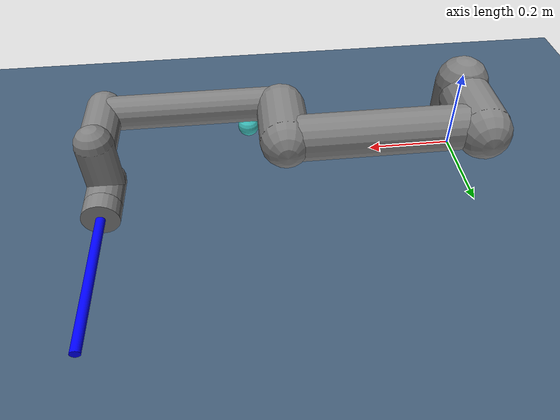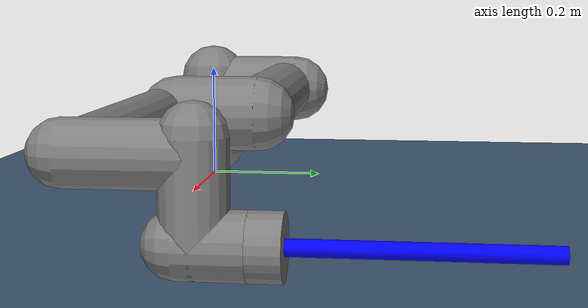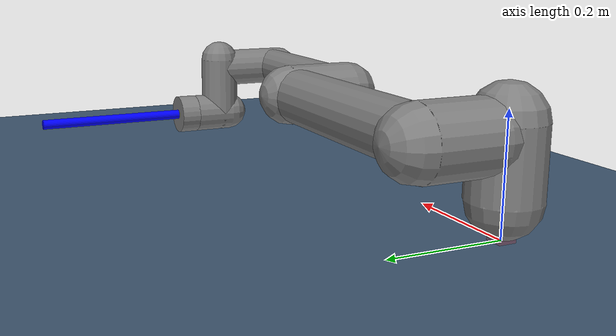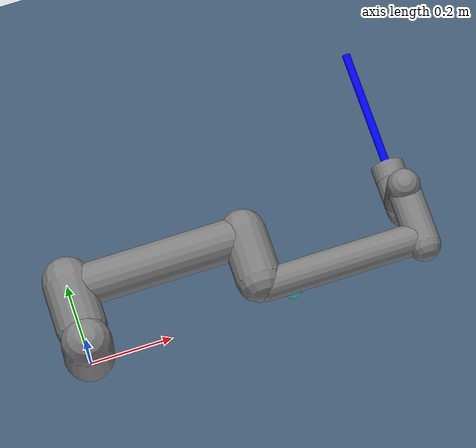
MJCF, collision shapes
<mujoco model="unnamed_model">
  <compiler angle="radian"/>

  <option integrator="implicitfast"/>

  <default>
    <default class="/"/>
    <default class="ur5e/">
      <default class="ur5e/ur5e">
        <material shininess="0.25"/>
        <joint range="-6.28319 6.28319" armature="0.1"/>
        <site size="0.001 0.005 0.005" group="4" rgba="0.5 0.5 0.5 0.3"/>
        <general ctrlrange="-6.2831 6.2831" forcerange="-150 150" biastype="affine" gainprm="2000" biasprm="0 -2000 -400"/>
        <default class="ur5e/size3">
          <default class="ur5e/size3_limited">
            <joint range="-3.1415 3.1415"/>
            <general ctrlrange="-3.1415 3.1415"/>
          </default>
        </default>
        <default class="ur5e/size1">
          <general forcerange="-28 28" gainprm="500" biasprm="0 -500 -100"/>
        </default>
        <default class="ur5e/visual">
          <geom type="mesh" contype="0" conaffinity="0" group="2"/>
        </default>
        <default class="ur5e/collision">
          <geom type="capsule" group="3"/>
          <default class="ur5e/eef_collision">
            <geom type="cylinder"/>
          </default>
        </default>
      </default>
    </default>
    <default class="ur5e/unnamed_model/"/>
  </default>

  <asset>
    <texture type="2d" name="//unnamed_texture_0" builtin="checker" rgb1="0.2 0.3 0.4" rgb2="0.3 0.4 0.5" width="300" height="300"/>
    <texture type="skybox" name="ur5e/unnamed_model//unnamed_texture_0" builtin="gradient" rgb1="1 1 1" rgb2="0.6 0.8 1" width="256" height="1536"/>
    <material name="grid" class="/" texture="//unnamed_texture_0" texrepeat="5 5" reflectance="0.2"/>
    <material name="ur5e/black" class="ur5e/ur5e" rgba="0.033 0.033 0.033 1"/>
    <material name="ur5e/jointgray" class="ur5e/ur5e" rgba="0.278 0.278 0.278 1"/>
    <material name="ur5e/linkgray" class="ur5e/ur5e" rgba="0.82 0.82 0.82 1"/>
    <material name="ur5e/urblue" class="ur5e/ur5e" rgba="0.49 0.678 0.8 1"/>
    <mesh name="ur5e/base_0" class="ur5e/" file="base_0-d5328a99917358d9aa384f12743fe73698461d1c.obj"/>
    <mesh name="ur5e/base_1" class="ur5e/" file="base_1-d1c667ae5f87b9c900fdeadad850205153846396.obj"/>
    <mesh name="ur5e/shoulder_0" class="ur5e/" file="shoulder_0-89051b80580d45ef39cb220bf068742b01770552.obj"/>
    <mesh name="ur5e/shoulder_1" class="ur5e/" file="shoulder_1-50ba15e82459989cf7f17cba7b1aafbca2781206.obj"/>
    <mesh name="ur5e/shoulder_2" class="ur5e/" file="shoulder_2-29ad171bec79e2912abb81d250aaf5ff9a67bc60.obj"/>
    <mesh name="ur5e/upperarm_0" class="ur5e/" file="upperarm_0-16bfdf8d1b19d35ef0adbc4cf29ab0c7edb62dcf.obj"/>
    <mesh name="ur5e/upperarm_1" class="ur5e/" file="upperarm_1-c53724435bec35e1b608145457af767b038f4fd1.obj"/>
    <mesh name="ur5e/upperarm_2" class="ur5e/" file="upperarm_2-199e0d0c1baa55a078742ed298800ff26d072c09.obj"/>
    <mesh name="ur5e/upperarm_3" class="ur5e/" file="upperarm_3-62f2bba935d9ab94800a49bcb6ede7b0fa9dd071.obj"/>
    <mesh name="ur5e/forearm_0" class="ur5e/" file="forearm_0-7994229075bdd0e4a5c860ca174278ee8eda8229.obj"/>
    <mesh name="ur5e/forearm_1" class="ur5e/" file="forearm_1-c72848167eef89e0d9801ddd7da516e7e878776e.obj"/>
    <mesh name="ur5e/forearm_2" class="ur5e/" file="forearm_2-3a33518f421ed893ff9b0d759af07b0e5900e78c.obj"/>
    <mesh name="ur5e/forearm_3" class="ur5e/" file="forearm_3-54cad2556a94cdda04a7cef5c84554a7d9f3ab03.obj"/>
    <mesh name="ur5e/wrist1_0" class="ur5e/" file="wrist1_0-6876ccb9d0084054268dd6aec007e5a61aea6c2d.obj"/>
    <mesh name="ur5e/wrist1_1" class="ur5e/" file="wrist1_1-0f7e6640a9dfb98e58078997f5f82bd433879387.obj"/>
    <mesh name="ur5e/wrist1_2" class="ur5e/" file="wrist1_2-3f6dcae8c736e2c42db3746db7f24ac4516aaca7.obj"/>
    <mesh name="ur5e/wrist2_0" class="ur5e/" file="wrist2_0-fdb3f7bc360f8f37f6be6270c8b507291dc9b01c.obj"/>
    <mesh name="ur5e/wrist2_1" class="ur5e/" file="wrist2_1-258ca475798c530d954723dc29f3d67086ead0d9.obj"/>
    <mesh name="ur5e/wrist2_2" class="ur5e/" file="wrist2_2-c6734971531db7f2f09e746377aa9faccb69b192.obj"/>
    <mesh name="ur5e/wrist3" class="ur5e/" file="wrist3-a1fffb4f599e121fb18be40e087b6fd7fb164e59.obj"/>
  </asset>

  <worldbody>
    <geom name="//unnamed_geom_0" class="/" size="2 2 0.1" type="plane" material="grid"/>
    <light name="//unnamed_light_0" class="/" pos="-2 -1 3" dir="0.666667 0.333333 -0.666667"/>
    <light name="//unnamed_light_1" class="/" pos="2 -1 3" dir="-0.666667 0.333333 -0.666667"/>
    <body name="mocap" mocap="true">
      <geom name="//unnamed_geom_1" class="/" size="0.015 0.015 0.015" type="box" contype="0" conaffinity="0" rgba="1 0 0 0.2"/>
    </body>
    <body name="ur5e/" quat="0.707107 0 0 -0.707107">
      <light name="ur5e/spotlight" class="ur5e/" target="ur5e/wrist_2_link" pos="0 -1 2" dir="0 0 -1" mode="targetbodycom"/>
      <body name="ur5e/base" childclass="ur5e/ur5e" quat="0.707107 0 0 0.707107">
        <inertial pos="0 0 0" mass="4" diaginertia="0.00443333 0.00443333 0.0072"/>
        <geom name="ur5e//unnamed_geom_0" class="ur5e/visual" material="ur5e/black" mesh="ur5e/base_0"/>
        <geom name="ur5e//unnamed_geom_1" class="ur5e/visual" material="ur5e/jointgray" mesh="ur5e/base_1"/>
        <body name="ur5e/shoulder_link" pos="0 0 0.163">
          <inertial pos="0 0 0" mass="3.7" diaginertia="0.0102675 0.0102675 0.00666"/>
          <joint name="ur5e/shoulder_pan_joint" class="ur5e/size3" pos="0 0 0" axis="0 0 1"/>
          <geom name="ur5e//unnamed_geom_2" class="ur5e/visual" material="ur5e/urblue" mesh="ur5e/shoulder_0"/>
          <geom name="ur5e//unnamed_geom_3" class="ur5e/visual" material="ur5e/black" mesh="ur5e/shoulder_1"/>
          <geom name="ur5e//unnamed_geom_4" class="ur5e/visual" material="ur5e/jointgray" mesh="ur5e/shoulder_2"/>
          <geom name="ur5e//unnamed_geom_5" class="ur5e/collision" size="0.06 0.06" pos="0 0 -0.04"/>
          <body name="ur5e/upper_arm_link" pos="0 0.138 0" quat="0.707107 0 0.707107 0">
            <inertial pos="0 0 0.2125" mass="8.393" diaginertia="0.133886 0.133886 0.0151074"/>
            <joint name="ur5e/shoulder_lift_joint" class="ur5e/size3" pos="0 0 0" axis="0 1 0"/>
            <geom name="ur5e//unnamed_geom_6" class="ur5e/visual" material="ur5e/linkgray" mesh="ur5e/upperarm_0"/>
            <geom name="ur5e//unnamed_geom_7" class="ur5e/visual" material="ur5e/black" mesh="ur5e/upperarm_1"/>
            <geom name="ur5e//unnamed_geom_8" class="ur5e/visual" material="ur5e/jointgray" mesh="ur5e/upperarm_2"/>
            <geom name="ur5e//unnamed_geom_9" class="ur5e/visual" material="ur5e/urblue" mesh="ur5e/upperarm_3"/>
            <geom name="ur5e//unnamed_geom_10" class="ur5e/collision" size="0.06 0.06" pos="0 -0.04 0" quat="0.707107 0.707107 0 0"/>
            <geom name="ur5e//unnamed_geom_11" class="ur5e/collision" size="0.05 0.2" pos="0 0 0.2"/>
            <body name="ur5e/forearm_link" pos="0 -0.131 0.425">
              <inertial pos="0 0 0.196" mass="2.275" diaginertia="0.0311796 0.0311796 0.004095"/>
              <joint name="ur5e/elbow_joint" class="ur5e/size3_limited" pos="0 0 0" axis="0 1 0"/>
              <geom name="ur5e//unnamed_geom_12" class="ur5e/visual" material="ur5e/urblue" mesh="ur5e/forearm_0"/>
              <geom name="ur5e//unnamed_geom_13" class="ur5e/visual" material="ur5e/linkgray" mesh="ur5e/forearm_1"/>
              <geom name="ur5e//unnamed_geom_14" class="ur5e/visual" material="ur5e/black" mesh="ur5e/forearm_2"/>
              <geom name="ur5e//unnamed_geom_15" class="ur5e/visual" material="ur5e/jointgray" mesh="ur5e/forearm_3"/>
              <geom name="ur5e//unnamed_geom_16" class="ur5e/collision" size="0.055 0.06" pos="0 0.08 0" quat="0.707107 0.707107 0 0"/>
              <geom name="ur5e//unnamed_geom_17" class="ur5e/collision" size="0.038 0.19" pos="0 0 0.2"/>
              <body name="ur5e/wrist_1_link" pos="0 0 0.392" quat="0.707107 0 0.707107 0">
                <inertial pos="0 0.127 0" mass="1.219" diaginertia="0.0025599 0.0025599 0.0021942"/>
                <joint name="ur5e/wrist_1_joint" class="ur5e/size1" pos="0 0 0" axis="0 1 0"/>
                <geom name="ur5e//unnamed_geom_18" class="ur5e/visual" material="ur5e/black" mesh="ur5e/wrist1_0"/>
                <geom name="ur5e//unnamed_geom_19" class="ur5e/visual" material="ur5e/urblue" mesh="ur5e/wrist1_1"/>
                <geom name="ur5e//unnamed_geom_20" class="ur5e/visual" material="ur5e/jointgray" mesh="ur5e/wrist1_2"/>
                <geom name="ur5e//unnamed_geom_21" class="ur5e/collision" size="0.04 0.07" pos="0 0.05 0" quat="0.707107 0.707107 0 0"/>
                <body name="ur5e/wrist_2_link" pos="0 0.127 0">
                  <inertial pos="0 0 0.1" mass="1.219" diaginertia="0.0025599 0.0025599 0.0021942"/>
                  <joint name="ur5e/wrist_2_joint" class="ur5e/size1" pos="0 0 0" axis="0 0 1"/>
                  <geom name="ur5e//unnamed_geom_22" class="ur5e/visual" material="ur5e/black" mesh="ur5e/wrist2_0"/>
                  <geom name="ur5e//unnamed_geom_23" class="ur5e/visual" material="ur5e/urblue" mesh="ur5e/wrist2_1"/>
                  <geom name="ur5e//unnamed_geom_24" class="ur5e/visual" material="ur5e/jointgray" mesh="ur5e/wrist2_2"/>
                  <geom name="ur5e//unnamed_geom_25" class="ur5e/collision" size="0.04 0.06" pos="0 0 0.04"/>
                  <geom name="ur5e//unnamed_geom_26" class="ur5e/collision" size="0.04 0.04" pos="0 0.02 0.1" quat="0.707107 0.707107 0 0"/>
                  <body name="ur5e/wrist_3_link" pos="0 0 0.1">
                    <inertial pos="0 0.0771683 0" quat="0.707107 0 0 0.707107" mass="0.1889" diaginertia="0.000132134 9.90863e-05 9.90863e-05"/>
                    <joint name="ur5e/wrist_3_joint" class="ur5e/size1" pos="0 0 0" axis="0 1 0"/>
                    <geom name="ur5e//unnamed_geom_27" class="ur5e/visual" material="ur5e/linkgray" mesh="ur5e/wrist3"/>
                    <geom name="ur5e//unnamed_geom_28" class="ur5e/eef_collision" size="0.04 0.02" pos="0 0.08 0" quat="0.707107 0.707107 0 0"/>
                    <body name="ur5e/tool0_link" pos="0 0.1 0" quat="-0.707107 0.707107 0 0">
                      <site name="ur5e/attachment_site" pos="0 0 0"/>
                      <site name="ur5e/eef_site" pos="0 0 0.05" quat="0 0.707107 -0.707107 0"/>
                      <body name="ur5e/unnamed_model/">
                        <body name="ur5e/unnamed_model//unnamed_body_0" pos="0 0 0.15">
                          <geom name="ur5e/unnamed_model//unnamed_geom_0" class="ur5e/unnamed_model/" size="0.01 0.15" type="cylinder" rgba="0 0 1 1"/>
                        </body>
                      </body>
                    </body>
                  </body>
                </body>
              </body>
            </body>
          </body>
        </body>
      </body>
    </body>
    <body name="golf_ball_body" pos="0.5 0 0.049">
      <joint name="//unnamed_joint_0" class="/" type="free" limited="false" actuatorfrclimited="false"/>
      <geom name="golf_ball" class="/" size="0.024" pos="0 0 0.049" friction="0.4 0.005 1e-05" mass="1.2" rgba="0.247 0.772 0.76 1"/>
    </body>
  </worldbody>
</mujoco>
